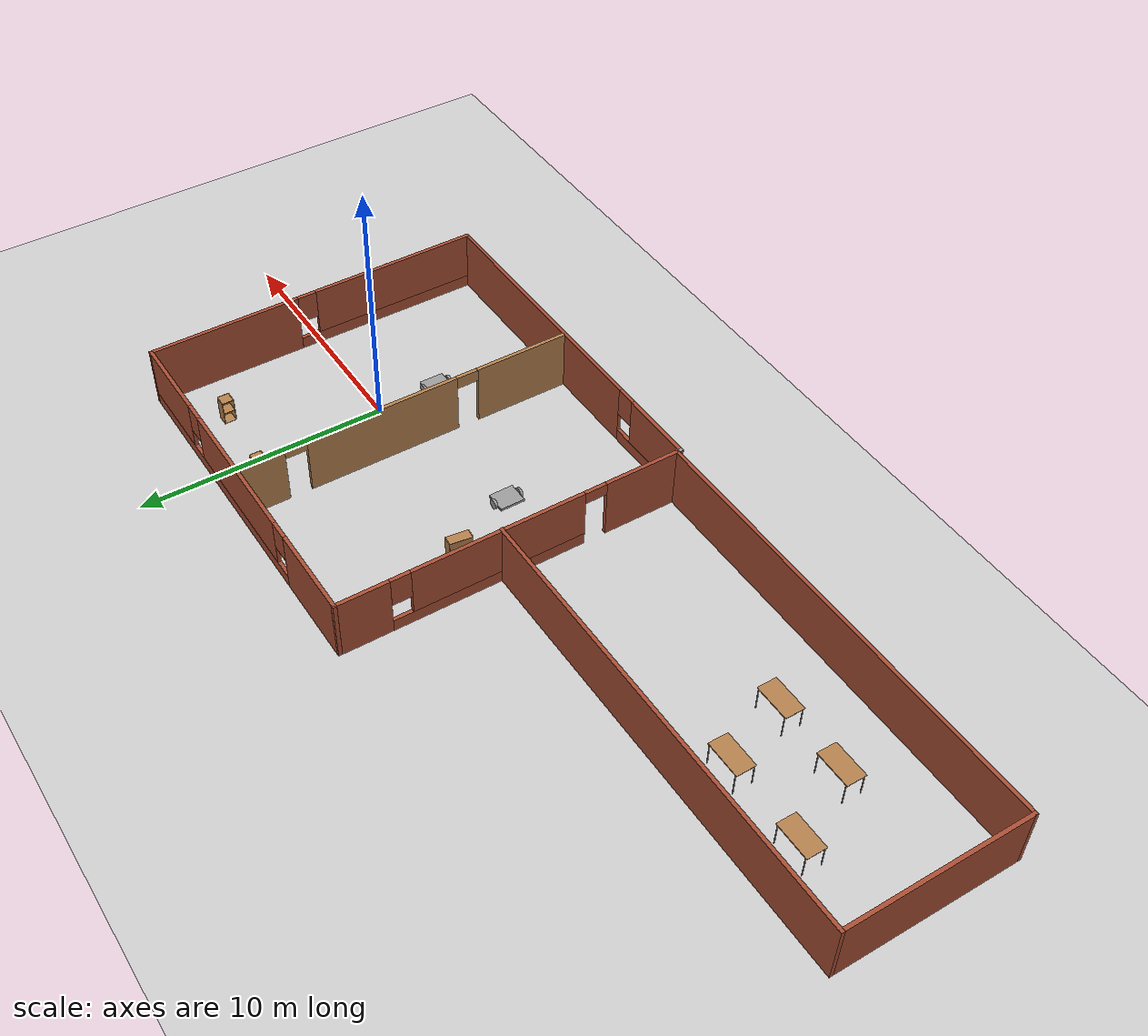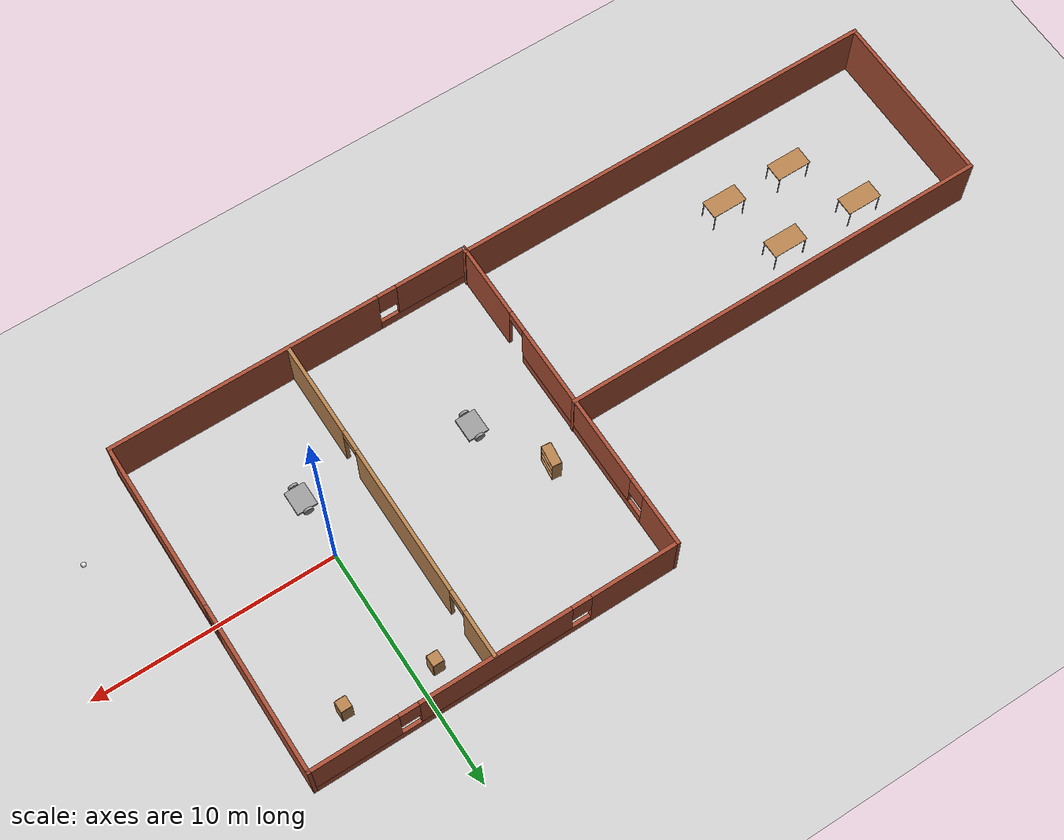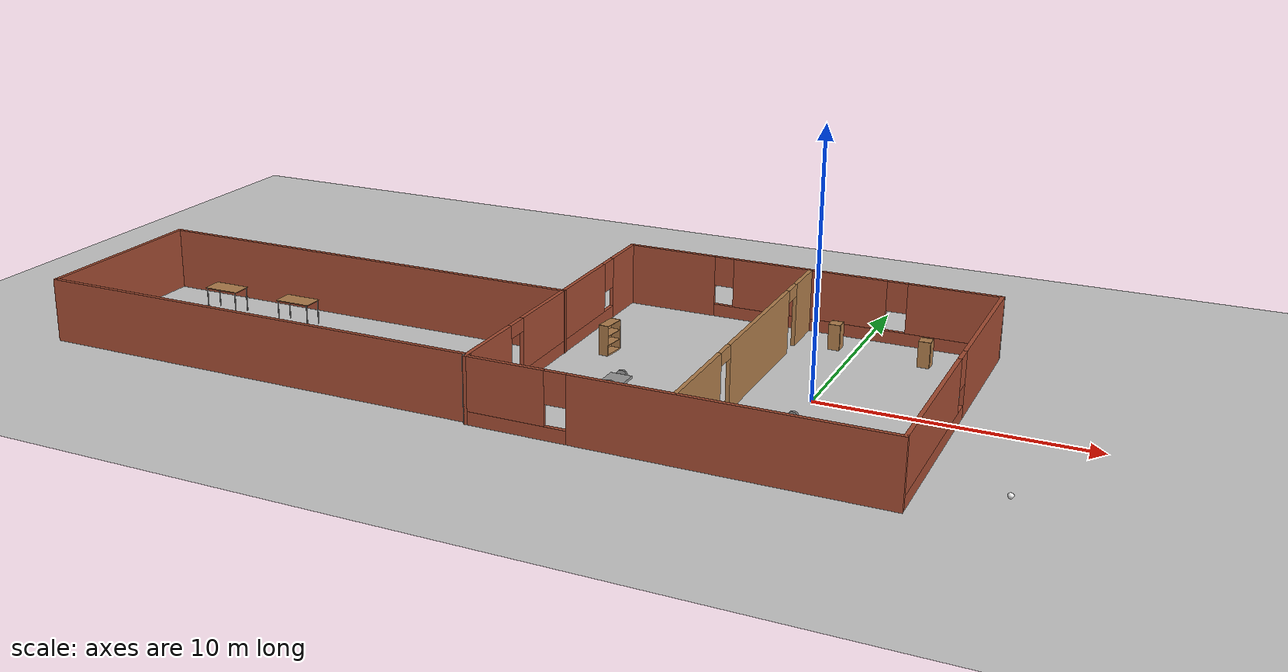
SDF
<sdf version="1.6">
 <world name="default">
  <light name="sun" type="directional">
   <pose>0 0 10 0 -0 0</pose>
   <diffuse>0.8 0.8 0.8 1</diffuse>
   <specular>0.2 0.2 0.2 1</specular>
   <attenuation>
    <range>1000</range>
    <constant>0.9</constant>
    <linear>0.01</linear>
    <quadratic>0.001</quadratic>
   </attenuation>
   <direction>-0.5 0.1 -0.9</direction>
  </light>
  <model name="ground_plane">
   <static>1</static>
   <link name="link">
    <collision name="collision">
     <geometry><plane><normal>0 0 1</normal><size>100 100</size></plane></geometry>
     <surface>
      <contact><collide_bitmask>65535</collide_bitmask></contact>
      <friction><ode><mu>100</mu><mu2>50</mu2></ode></friction>
     </surface>
    </collision>
    <visual name="visual">
     <cast_shadows>0</cast_shadows>
     <geometry><plane><normal>0 0 1</normal><size>100 100</size></plane></geometry>
     <material>
      <script><uri>file://media/materials/scripts/gazebo.material</uri><name>Gazebo/Grey</name></script>
     </material>
    </visual>
   </link>
  </model>
  <gravity>0 0 -9.8</gravity>
  <magnetic_field>6e-06 2.3e-05 -4.2e-05</magnetic_field>
  <atmosphere type="adiabatic"/>
  <physics name="default_physics" default="0" type="ode">
   <max_step_size>0.001</max_step_size>
   <real_time_factor>1</real_time_factor>
   <real_time_update_rate>1000</real_time_update_rate>
  </physics>
  <scene><ambient>0.4 0.4 0.4 1</ambient><background>0.7 0.7 0.7 1</background><shadows>1</shadows></scene>
  <spherical_coordinates>
   <surface_model>EARTH_WGS84</surface_model>
   <latitude_deg>0</latitude_deg>
   <longitude_deg>0</longitude_deg>
   <elevation>0</elevation>
   <heading_deg>0</heading_deg>
  </spherical_coordinates>
  <model name="building">
   <pose>-11.5372 0 0 0 -0 0</pose>
   <link name="Wall_17">
    <pose>1.53722 0 0 0 0 -1.5708</pose>
    <visual name="Wall_17_Visual_0">
     <pose>-6.00099 0 1.25 0 -0 0</pose>
     <geometry><box><size>2.14802 0.15 2.5</size></box></geometry>
     <material>
      <script><uri>file://media/materials/scripts/gazebo.material</uri><name>Gazebo/Bricks</name></script>
      <ambient>1 1 1 1</ambient>
     </material>
     <meta><layer>0</layer></meta>
    </visual>
    <collision name="Wall_17_Collision_0">
     <geometry><box><size>2.14802 0.15 2.5</size></box></geometry>
     <pose>-6.00099 0 1.25 0 -0 0</pose>
    </collision>
    <visual name="Wall_17_Visual_1">
     <pose>5.42921 0 1.25 0 -0 0</pose>
     <geometry><box><size>3.29158 0.15 2.5</size></box></geometry>
     <material>
      <script><uri>file://media/materials/scripts/gazebo.material</uri><name>Gazebo/Bricks</name></script>
      <ambient>1 1 1 1</ambient>
     </material>
     <meta><layer>0</layer></meta>
    </visual>
    <collision name="Wall_17_Collision_1">
     <geometry><box><size>3.29158 0.15 2.5</size></box></geometry>
     <pose>5.42921 0 1.25 0 -0 0</pose>
    </collision>
    <visual name="Wall_17_Visual_2">
     <pose>-1.02178 0 0.25 0 -0 0</pose>
     <geometry><box><size>7.8104 0.15 0.5</size></box></geometry>
     <material>
      <script><uri>file://media/materials/scripts/gazebo.material</uri><name>Gazebo/Bricks</name></script>
      <ambient>1 1 1 1</ambient>
     </material>
     <meta><layer>0</layer></meta>
    </visual>
    <collision name="Wall_17_Collision_2">
     <geometry><box><size>7.8104 0.15 0.5</size></box></geometry>
     <pose>-1.02178 0 0.25 0 -0 0</pose>
    </collision>
    <visual name="Wall_17_Visual_3">
     <pose>-0.621784 0 1.5 0 -0 0</pose>
     <geometry><box><size>7.0104 0.15 2</size></box></geometry>
     <material>
      <script><uri>file://media/materials/scripts/gazebo.material</uri><name>Gazebo/Bricks</name></script>
      <ambient>1 1 1 1</ambient>
     </material>
     <meta><layer>0</layer></meta>
    </visual>
    <collision name="Wall_17_Collision_3">
     <geometry><box><size>7.0104 0.15 2</size></box></geometry>
     <pose>-0.621784 0 1.5 0 -0 0</pose>
    </collision>
    <visual name="Wall_17_Visual_4">
     <pose>-4.52698 0 1.9 0 -0 0</pose>
     <geometry><box><size>0.8 0.15 1.2</size></box></geometry>
     <material>
      <script><uri>file://media/materials/scripts/gazebo.material</uri><name>Gazebo/Bricks</name></script>
      <ambient>1 1 1 1</ambient>
     </material>
     <meta><layer>0</layer></meta>
    </visual>
    <collision name="Wall_17_Collision_4">
     <geometry><box><size>0.8 0.15 1.2</size></box></geometry>
     <pose>-4.52698 0 1.9 0 -0 0</pose>
    </collision>
    <visual name="Wall_17_Visual_5">
     <pose>3.33342 0 2.25 0 -0 0</pose>
     <geometry><box><size>0.9 0.15 0.5</size></box></geometry>
     <material>
      <script><uri>file://media/materials/scripts/gazebo.material</uri><name>Gazebo/Bricks</name></script>
      <ambient>1 1 1 1</ambient>
     </material>
     <meta><layer>0</layer></meta>
    </visual>
    <collision name="Wall_17_Collision_5">
     <geometry><box><size>0.9 0.15 0.5</size></box></geometry>
     <pose>3.33342 0 2.25 0 -0 0</pose>
    </collision>
   </link>
   <link name="Wall_19">
    <pose>9.14245 0.034967 0 0 0 -1.5708</pose>
    <visual name="Wall_19_Visual_0">
     <pose>-6.0178 0 1.25 0 -0 0</pose>
     <geometry><box><size>1.9644 0.15 2.5</size></box></geometry>
     <material>
      <script><uri>file://media/materials/scripts/gazebo.material</uri><name>Gazebo/Wood</name></script>
      <ambient>1 1 1 1</ambient>
     </material>
     <meta><layer>0</layer></meta>
    </visual>
    <collision name="Wall_19_Collision_0">
     <geometry><box><size>1.9644 0.15 2.5</size></box></geometry>
     <pose>-6.0178 0 1.25 0 -0 0</pose>
    </collision>
    <visual name="Wall_19_Visual_1">
     <pose>-0.982911 0 1.25 0 -0 0</pose>
     <geometry><box><size>6.30537 0.15 2.5</size></box></geometry>
     <material>
      <script><uri>file://media/materials/scripts/gazebo.material</uri><name>Gazebo/Wood</name></script>
      <ambient>1 1 1 1</ambient>
     </material>
     <meta><layer>0</layer></meta>
    </visual>
    <collision name="Wall_19_Collision_1">
     <geometry><box><size>6.30537 0.15 2.5</size></box></geometry>
     <pose>-0.982911 0 1.25 0 -0 0</pose>
    </collision>
    <visual name="Wall_19_Visual_2">
     <pose>5.03489 0 1.25 0 -0 0</pose>
     <geometry><box><size>3.93023 0.15 2.5</size></box></geometry>
     <material>
      <script><uri>file://media/materials/scripts/gazebo.material</uri><name>Gazebo/Wood</name></script>
      <ambient>1 1 1 1</ambient>
     </material>
     <meta><layer>0</layer></meta>
    </visual>
    <collision name="Wall_19_Collision_2">
     <geometry><box><size>3.93023 0.15 2.5</size></box></geometry>
     <pose>5.03489 0 1.25 0 -0 0</pose>
    </collision>
    <visual name="Wall_19_Visual_3">
     <pose>-4.58559 0 2.25 0 -0 0</pose>
     <geometry><box><size>0.9 0.15 0.5</size></box></geometry>
     <material>
      <script><uri>file://media/materials/scripts/gazebo.material</uri><name>Gazebo/Wood</name></script>
      <ambient>1 1 1 1</ambient>
     </material>
     <meta><layer>0</layer></meta>
    </visual>
    <collision name="Wall_19_Collision_3">
     <geometry><box><size>0.9 0.15 0.5</size></box></geometry>
     <pose>-4.58559 0 2.25 0 -0 0</pose>
    </collision>
    <visual name="Wall_19_Visual_4">
     <pose>2.61977 0 2.25 0 -0 0</pose>
     <geometry><box><size>0.9 0.15 0.5</size></box></geometry>
     <material>
      <script><uri>file://media/materials/scripts/gazebo.material</uri><name>Gazebo/Wood</name></script>
      <ambient>1 1 1 1</ambient>
     </material>
     <meta><layer>0</layer></meta>
    </visual>
    <collision name="Wall_19_Collision_4">
     <geometry><box><size>0.9 0.15 0.5</size></box></geometry>
     <pose>2.61977 0 2.25 0 -0 0</pose>
    </collision>
   </link>
   <link name="Wall_21">
    <collision name="Wall_21_Collision">
     <geometry><box><size>18.25 0.15 2.5</size></box></geometry>
     <pose>0 0 1.25 0 -0 0</pose>
    </collision>
    <visual name="Wall_21_Visual">
     <pose>0 0 1.25 0 -0 0</pose>
     <geometry><box><size>18.25 0.15 2.5</size></box></geometry>
     <material>
      <script><uri>file://media/materials/scripts/gazebo.material</uri><name>Gazebo/Bricks</name></script>
      <ambient>1 1 1 1</ambient>
     </material>
     <meta><layer>0</layer></meta>
    </visual>
    <pose>-7.48722 0.503208 0 0 -0 3.14159</pose>
   </link>
   <link name="Wall_22">
    <collision name="Wall_22_Collision">
     <geometry><box><size>7.5 0.15 2.5</size></box></geometry>
     <pose>0 0 1.25 0 -0 0</pose>
    </collision>
    <visual name="Wall_22_Visual">
     <pose>0 0 1.25 0 -0 0</pose>
     <geometry><box><size>7.5 0.15 2.5</size></box></geometry>
     <material>
      <script><uri>file://media/materials/scripts/gazebo.material</uri><name>Gazebo/Bricks</name></script>
      <ambient>1 1 1 1</ambient>
     </material>
     <meta><layer>0</layer></meta>
    </visual>
    <pose>-16.5372 -3.17179 0 0 0 -1.5708</pose>
   </link>
   <link name="Wall_23">
    <collision name="Wall_23_Collision">
     <geometry><box><size>18.25 0.15 2.5</size></box></geometry>
     <pose>0 0 1.25 0 -0 0</pose>
    </collision>
    <visual name="Wall_23_Visual">
     <pose>0 0 1.25 0 -0 0</pose>
     <geometry><box><size>18.25 0.15 2.5</size></box></geometry>
     <material>
      <script><uri>file://media/materials/scripts/gazebo.material</uri><name>Gazebo/Bricks</name></script>
      <ambient>1 1 1 1</ambient>
     </material>
     <meta><layer>0</layer></meta>
    </visual>
    <pose>-7.48722 -6.84679 0 0 -0 0</pose>
   </link>
   <link name="Wall_4">
    <pose>9.03722 7 0 0 -0 0</pose>
    <visual name="Wall_4_Visual_0">
     <pose>-5.71283 0 1.25 0 -0 0</pose>
     <geometry><box><size>3.72434 0.15 2.5</size></box></geometry>
     <material>
      <script><uri>file://media/materials/scripts/gazebo.material</uri><name>Gazebo/Bricks</name></script>
      <ambient>1 1 1 1</ambient>
     </material>
     <meta><layer>0</layer></meta>
    </visual>
    <collision name="Wall_4_Collision_0">
     <geometry><box><size>3.72434 0.15 2.5</size></box></geometry>
     <pose>-5.71283 0 1.25 0 -0 0</pose>
    </collision>
    <visual name="Wall_4_Visual_1">
     <pose>1.86217 0 0.25 0 -0 0</pose>
     <geometry><box><size>11.4257 0.15 0.5</size></box></geometry>
     <material>
      <script><uri>file://media/materials/scripts/gazebo.material</uri><name>Gazebo/Bricks</name></script>
      <ambient>1 1 1 1</ambient>
     </material>
     <meta><layer>0</layer></meta>
    </visual>
    <collision name="Wall_4_Collision_1">
     <geometry><box><size>11.4257 0.15 0.5</size></box></geometry>
     <pose>1.86217 0 0.25 0 -0 0</pose>
    </collision>
    <visual name="Wall_4_Visual_2">
     <pose>0.058444 0 1.5 0 -0 0</pose>
     <geometry><box><size>6.21822 0.15 2</size></box></geometry>
     <material>
      <script><uri>file://media/materials/scripts/gazebo.material</uri><name>Gazebo/Bricks</name></script>
      <ambient>1 1 1 1</ambient>
     </material>
     <meta><layer>0</layer></meta>
    </visual>
    <collision name="Wall_4_Collision_2">
     <geometry><box><size>6.21822 0.15 2</size></box></geometry>
     <pose>0.058444 0 1.5 0 -0 0</pose>
    </collision>
    <visual name="Wall_4_Visual_3">
     <pose>5.77128 0 1.5 0 -0 0</pose>
     <geometry><box><size>3.60745 0.15 2</size></box></geometry>
     <material>
      <script><uri>file://media/materials/scripts/gazebo.material</uri><name>Gazebo/Bricks</name></script>
      <ambient>1 1 1 1</ambient>
     </material>
     <meta><layer>0</layer></meta>
    </visual>
    <collision name="Wall_4_Collision_3">
     <geometry><box><size>3.60745 0.15 2</size></box></geometry>
     <pose>5.77128 0 1.5 0 -0 0</pose>
    </collision>
    <visual name="Wall_4_Visual_4">
     <pose>-3.45066 0 1.9 0 -0 0</pose>
     <geometry><box><size>0.8 0.15 1.2</size></box></geometry>
     <material>
      <script><uri>file://media/materials/scripts/gazebo.material</uri><name>Gazebo/Bricks</name></script>
      <ambient>1 1 1 1</ambient>
     </material>
     <meta><layer>0</layer></meta>
    </visual>
    <collision name="Wall_4_Collision_4">
     <geometry><box><size>0.8 0.15 1.2</size></box></geometry>
     <pose>-3.45066 0 1.9 0 -0 0</pose>
    </collision>
    <visual name="Wall_4_Visual_5">
     <pose>3.56755 0 1.9 0 -0 0</pose>
     <geometry><box><size>0.8 0.15 1.2</size></box></geometry>
     <material>
      <script><uri>file://media/materials/scripts/gazebo.material</uri><name>Gazebo/Bricks</name></script>
      <ambient>1 1 1 1</ambient>
     </material>
     <meta><layer>0</layer></meta>
    </visual>
    <collision name="Wall_4_Collision_5">
     <geometry><box><size>0.8 0.15 1.2</size></box></geometry>
     <pose>3.56755 0 1.9 0 -0 0</pose>
    </collision>
   </link>
   <link name="Wall_5">
    <pose>16.5372 0 0 0 0 -1.5708</pose>
    <visual name="Wall_5_Visual_0">
     <pose>-3.94232 0 1.25 0 -0 0</pose>
     <geometry><box><size>6.26537 0.15 2.5</size></box></geometry>
     <material>
      <script><uri>file://media/materials/scripts/gazebo.material</uri><name>Gazebo/Bricks</name></script>
      <ambient>1 1 1 1</ambient>
     </material>
     <meta><layer>0</layer></meta>
    </visual>
    <collision name="Wall_5_Collision_0">
     <geometry><box><size>6.26537 0.15 2.5</size></box></geometry>
     <pose>-3.94232 0 1.25 0 -0 0</pose>
    </collision>
    <visual name="Wall_5_Visual_1">
     <pose>3.13268 0 0.25 0 -0 0</pose>
     <geometry><box><size>7.88463 0.15 0.5</size></box></geometry>
     <material>
      <script><uri>file://media/materials/scripts/gazebo.material</uri><name>Gazebo/Bricks</name></script>
      <ambient>1 1 1 1</ambient>
     </material>
     <meta><layer>0</layer></meta>
    </visual>
    <collision name="Wall_5_Collision_1">
     <geometry><box><size>7.88463 0.15 0.5</size></box></geometry>
     <pose>3.13268 0 0.25 0 -0 0</pose>
    </collision>
    <visual name="Wall_5_Visual_2">
     <pose>3.53268 0 1.5 0 -0 0</pose>
     <geometry><box><size>7.08463 0.15 2</size></box></geometry>
     <material>
      <script><uri>file://media/materials/scripts/gazebo.material</uri><name>Gazebo/Bricks</name></script>
      <ambient>1 1 1 1</ambient>
     </material>
     <meta><layer>0</layer></meta>
    </visual>
    <collision name="Wall_5_Collision_2">
     <geometry><box><size>7.08463 0.15 2</size></box></geometry>
     <pose>3.53268 0 1.5 0 -0 0</pose>
    </collision>
    <visual name="Wall_5_Visual_3">
     <pose>-0.409632 0 1.9 0 -0 0</pose>
     <geometry><box><size>0.8 0.15 1.2</size></box></geometry>
     <material>
      <script><uri>file://media/materials/scripts/gazebo.material</uri><name>Gazebo/Bricks</name></script>
      <ambient>1 1 1 1</ambient>
     </material>
     <meta><layer>0</layer></meta>
    </visual>
    <collision name="Wall_5_Collision_3">
     <geometry><box><size>0.8 0.15 1.2</size></box></geometry>
     <pose>-0.409632 0 1.9 0 -0 0</pose>
    </collision>
   </link>
   <link name="Wall_6">
    <pose>9.03722 -7 0 0 -0 3.14159</pose>
    <visual name="Wall_6_Visual_0">
     <pose>-1.93465 0 1.25 0 -0 0</pose>
     <geometry><box><size>11.2807 0.15 2.5</size></box></geometry>
     <material>
      <script><uri>file://media/materials/scripts/gazebo.material</uri><name>Gazebo/Bricks</name></script>
      <ambient>1 1 1 1</ambient>
     </material>
     <meta><layer>0</layer></meta>
    </visual>
    <collision name="Wall_6_Collision_0">
     <geometry><box><size>11.2807 0.15 2.5</size></box></geometry>
     <pose>-1.93465 0 1.25 0 -0 0</pose>
    </collision>
    <visual name="Wall_6_Visual_1">
     <pose>5.64035 0 0.25 0 -0 0</pose>
     <geometry><box><size>3.8693 0.15 0.5</size></box></geometry>
     <material>
      <script><uri>file://media/materials/scripts/gazebo.material</uri><name>Gazebo/Bricks</name></script>
      <ambient>1 1 1 1</ambient>
     </material>
     <meta><layer>0</layer></meta>
    </visual>
    <collision name="Wall_6_Collision_1">
     <geometry><box><size>3.8693 0.15 0.5</size></box></geometry>
     <pose>5.64035 0 0.25 0 -0 0</pose>
    </collision>
    <visual name="Wall_6_Visual_2">
     <pose>6.04035 0 1.5 0 -0 0</pose>
     <geometry><box><size>3.0693 0.15 2</size></box></geometry>
     <material>
      <script><uri>file://media/materials/scripts/gazebo.material</uri><name>Gazebo/Bricks</name></script>
      <ambient>1 1 1 1</ambient>
     </material>
     <meta><layer>0</layer></meta>
    </visual>
    <collision name="Wall_6_Collision_2">
     <geometry><box><size>3.0693 0.15 2</size></box></geometry>
     <pose>6.04035 0 1.5 0 -0 0</pose>
    </collision>
    <visual name="Wall_6_Visual_3">
     <pose>4.1057 0 1.9 0 -0 0</pose>
     <geometry><box><size>0.8 0.15 1.2</size></box></geometry>
     <material>
      <script><uri>file://media/materials/scripts/gazebo.material</uri><name>Gazebo/Bricks</name></script>
      <ambient>1 1 1 1</ambient>
     </material>
     <meta><layer>0</layer></meta>
    </visual>
    <collision name="Wall_6_Collision_3">
     <geometry><box><size>0.8 0.15 1.2</size></box></geometry>
     <pose>4.1057 0 1.9 0 -0 0</pose>
    </collision>
   </link>
   <link name="Wall_7">
    <collision name="Wall_7_Collision">
     <geometry><box><size>0.15 0.15 2.5</size></box></geometry>
     <pose>0 0 1.25 0 -0 0</pose>
    </collision>
    <visual name="Wall_7_Visual">
     <pose>0 0 1.25 0 -0 0</pose>
     <geometry><box><size>0.15 0.15 2.5</size></box></geometry>
     <material>
      <script><uri>file://media/materials/scripts/gazebo.material</uri><name>Gazebo/Grey</name></script>
      <ambient>1 1 1 1</ambient>
     </material>
     <meta><layer>0</layer></meta>
    </visual>
    <pose>1.53722 -7 0 0 -0 0</pose>
   </link>
   <static>1</static>
  </model>
  <model name="table">
   <static>1</static>
   <link name="link">
    <collision name="surface">
     <pose>0 0 1 0 -0 0</pose>
     <geometry><box><size>1.5 0.8 0.03</size></box></geometry>
     <surface><friction><ode><mu>0.6</mu><mu2>0.6</mu2></ode></friction></surface>
    </collision>
    <visual name="visual1">
     <pose>0 0 1 0 -0 0</pose>
     <geometry><box><size>1.5 0.8 0.03</size></box></geometry>
     <material>
      <script><uri>file://media/materials/scripts/gazebo.material</uri><name>Gazebo/Wood</name></script>
     </material>
    </visual>
    <collision name="front_left_leg">
     <pose>0.68 0.38 0.5 0 -0 0</pose>
     <geometry><cylinder><radius>0.02</radius><length>1</length></cylinder></geometry>
    </collision>
    <visual name="front_left_leg">
     <pose>0.68 0.38 0.5 0 -0 0</pose>
     <geometry><cylinder><radius>0.02</radius><length>1</length></cylinder></geometry>
     <material>
      <script><uri>file://media/materials/scripts/gazebo.material</uri><name>Gazebo/Grey</name></script>
     </material>
    </visual>
    <collision name="front_right_leg">
     <pose>0.68 -0.38 0.5 0 -0 0</pose>
     <geometry><cylinder><radius>0.02</radius><length>1</length></cylinder></geometry>
    </collision>
    <visual name="front_right_leg">
     <pose>0.68 -0.38 0.5 0 -0 0</pose>
     <geometry><cylinder><radius>0.02</radius><length>1</length></cylinder></geometry>
     <material>
      <script><uri>file://media/materials/scripts/gazebo.material</uri><name>Gazebo/Grey</name></script>
     </material>
    </visual>
    <collision name="back_right_leg">
     <pose>-0.68 -0.38 0.5 0 -0 0</pose>
     <geometry><cylinder><radius>0.02</radius><length>1</length></cylinder></geometry>
    </collision>
    <visual name="back_right_leg">
     <pose>-0.68 -0.38 0.5 0 -0 0</pose>
     <geometry><cylinder><radius>0.02</radius><length>1</length></cylinder></geometry>
     <material>
      <script><uri>file://media/materials/scripts/gazebo.material</uri><name>Gazebo/Grey</name></script>
     </material>
    </visual>
    <collision name="back_left_leg">
     <pose>-0.68 0.38 0.5 0 -0 0</pose>
     <geometry><cylinder><radius>0.02</radius><length>1</length></cylinder></geometry>
    </collision>
    <visual name="back_left_leg">
     <pose>-0.68 0.38 0.5 0 -0 0</pose>
     <geometry><cylinder><radius>0.02</radius><length>1</length></cylinder></geometry>
     <material>
      <script><uri>file://media/materials/scripts/gazebo.material</uri><name>Gazebo/Grey</name></script>
     </material>
    </visual>
   </link>
   <pose>-24.3834 -1.2632 0 0 -0 0</pose>
  </model>
  <model name="table_0">
   <static>1</static>
   <link name="link">
    <collision name="surface">
     <pose>0 0 1 0 -0 0</pose>
     <geometry><box><size>1.5 0.8 0.03</size></box></geometry>
     <surface><friction><ode><mu>0.6</mu><mu2>0.6</mu2></ode></friction></surface>
    </collision>
    <visual name="visual1">
     <pose>0 0 1 0 -0 0</pose>
     <geometry><box><size>1.5 0.8 0.03</size></box></geometry>
     <material>
      <script><uri>file://media/materials/scripts/gazebo.material</uri><name>Gazebo/Wood</name></script>
     </material>
    </visual>
    <collision name="front_left_leg">
     <pose>0.68 0.38 0.5 0 -0 0</pose>
     <geometry><cylinder><radius>0.02</radius><length>1</length></cylinder></geometry>
    </collision>
    <visual name="front_left_leg">
     <pose>0.68 0.38 0.5 0 -0 0</pose>
     <geometry><cylinder><radius>0.02</radius><length>1</length></cylinder></geometry>
     <material>
      <script><uri>file://media/materials/scripts/gazebo.material</uri><name>Gazebo/Grey</name></script>
     </material>
    </visual>
    <collision name="front_right_leg">
     <pose>0.68 -0.38 0.5 0 -0 0</pose>
     <geometry><cylinder><radius>0.02</radius><length>1</length></cylinder></geometry>
    </collision>
    <visual name="front_right_leg">
     <pose>0.68 -0.38 0.5 0 -0 0</pose>
     <geometry><cylinder><radius>0.02</radius><length>1</length></cylinder></geometry>
     <material>
      <script><uri>file://media/materials/scripts/gazebo.material</uri><name>Gazebo/Grey</name></script>
     </material>
    </visual>
    <collision name="back_right_leg">
     <pose>-0.68 -0.38 0.5 0 -0 0</pose>
     <geometry><cylinder><radius>0.02</radius><length>1</length></cylinder></geometry>
    </collision>
    <visual name="back_right_leg">
     <pose>-0.68 -0.38 0.5 0 -0 0</pose>
     <geometry><cylinder><radius>0.02</radius><length>1</length></cylinder></geometry>
     <material>
      <script><uri>file://media/materials/scripts/gazebo.material</uri><name>Gazebo/Grey</name></script>
     </material>
    </visual>
    <collision name="back_left_leg">
     <pose>-0.68 0.38 0.5 0 -0 0</pose>
     <geometry><cylinder><radius>0.02</radius><length>1</length></cylinder></geometry>
    </collision>
    <visual name="back_left_leg">
     <pose>-0.68 0.38 0.5 0 -0 0</pose>
     <geometry><cylinder><radius>0.02</radius><length>1</length></cylinder></geometry>
     <material>
      <script><uri>file://media/materials/scripts/gazebo.material</uri><name>Gazebo/Grey</name></script>
     </material>
    </visual>
   </link>
   <pose>-20.8804 -1.28719 0 0 -0 0</pose>
  </model>
  <model name="table_1">
   <static>1</static>
   <link name="link">
    <collision name="surface">
     <pose>0 0 1 0 -0 0</pose>
     <geometry><box><size>1.5 0.8 0.03</size></box></geometry>
     <surface><friction><ode><mu>0.6</mu><mu2>0.6</mu2></ode></friction></surface>
    </collision>
    <visual name="visual1">
     <pose>0 0 1 0 -0 0</pose>
     <geometry><box><size>1.5 0.8 0.03</size></box></geometry>
     <material>
      <script><uri>file://media/materials/scripts/gazebo.material</uri><name>Gazebo/Wood</name></script>
     </material>
    </visual>
    <collision name="front_left_leg">
     <pose>0.68 0.38 0.5 0 -0 0</pose>
     <geometry><cylinder><radius>0.02</radius><length>1</length></cylinder></geometry>
    </collision>
    <visual name="front_left_leg">
     <pose>0.68 0.38 0.5 0 -0 0</pose>
     <geometry><cylinder><radius>0.02</radius><length>1</length></cylinder></geometry>
     <material>
      <script><uri>file://media/materials/scripts/gazebo.material</uri><name>Gazebo/Grey</name></script>
     </material>
    </visual>
    <collision name="front_right_leg">
     <pose>0.68 -0.38 0.5 0 -0 0</pose>
     <geometry><cylinder><radius>0.02</radius><length>1</length></cylinder></geometry>
    </collision>
    <visual name="front_right_leg">
     <pose>0.68 -0.38 0.5 0 -0 0</pose>
     <geometry><cylinder><radius>0.02</radius><length>1</length></cylinder></geometry>
     <material>
      <script><uri>file://media/materials/scripts/gazebo.material</uri><name>Gazebo/Grey</name></script>
     </material>
    </visual>
    <collision name="back_right_leg">
     <pose>-0.68 -0.38 0.5 0 -0 0</pose>
     <geometry><cylinder><radius>0.02</radius><length>1</length></cylinder></geometry>
    </collision>
    <visual name="back_right_leg">
     <pose>-0.68 -0.38 0.5 0 -0 0</pose>
     <geometry><cylinder><radius>0.02</radius><length>1</length></cylinder></geometry>
     <material>
      <script><uri>file://media/materials/scripts/gazebo.material</uri><name>Gazebo/Grey</name></script>
     </material>
    </visual>
    <collision name="back_left_leg">
     <pose>-0.68 0.38 0.5 0 -0 0</pose>
     <geometry><cylinder><radius>0.02</radius><length>1</length></cylinder></geometry>
    </collision>
    <visual name="back_left_leg">
     <pose>-0.68 0.38 0.5 0 -0 0</pose>
     <geometry><cylinder><radius>0.02</radius><length>1</length></cylinder></geometry>
     <material>
      <script><uri>file://media/materials/scripts/gazebo.material</uri><name>Gazebo/Grey</name></script>
     </material>
    </visual>
   </link>
   <pose>-22.9871 -3.97615 0 0 -0 0</pose>
  </model>
  <model name="table_2">
   <static>1</static>
   <link name="link">
    <collision name="surface">
     <pose>0 0 1 0 -0 0</pose>
     <geometry><box><size>1.5 0.8 0.03</size></box></geometry>
     <surface><friction><ode><mu>0.6</mu><mu2>0.6</mu2></ode></friction></surface>
    </collision>
    <visual name="visual1">
     <pose>0 0 1 0 -0 0</pose>
     <geometry><box><size>1.5 0.8 0.03</size></box></geometry>
     <material>
      <script><uri>file://media/materials/scripts/gazebo.material</uri><name>Gazebo/Wood</name></script>
     </material>
    </visual>
    <collision name="front_left_leg">
     <pose>0.68 0.38 0.5 0 -0 0</pose>
     <geometry><cylinder><radius>0.02</radius><length>1</length></cylinder></geometry>
    </collision>
    <visual name="front_left_leg">
     <pose>0.68 0.38 0.5 0 -0 0</pose>
     <geometry><cylinder><radius>0.02</radius><length>1</length></cylinder></geometry>
     <material>
      <script><uri>file://media/materials/scripts/gazebo.material</uri><name>Gazebo/Grey</name></script>
     </material>
    </visual>
    <collision name="front_right_leg">
     <pose>0.68 -0.38 0.5 0 -0 0</pose>
     <geometry><cylinder><radius>0.02</radius><length>1</length></cylinder></geometry>
    </collision>
    <visual name="front_right_leg">
     <pose>0.68 -0.38 0.5 0 -0 0</pose>
     <geometry><cylinder><radius>0.02</radius><length>1</length></cylinder></geometry>
     <material>
      <script><uri>file://media/materials/scripts/gazebo.material</uri><name>Gazebo/Grey</name></script>
     </material>
    </visual>
    <collision name="back_right_leg">
     <pose>-0.68 -0.38 0.5 0 -0 0</pose>
     <geometry><cylinder><radius>0.02</radius><length>1</length></cylinder></geometry>
    </collision>
    <visual name="back_right_leg">
     <pose>-0.68 -0.38 0.5 0 -0 0</pose>
     <geometry><cylinder><radius>0.02</radius><length>1</length></cylinder></geometry>
     <material>
      <script><uri>file://media/materials/scripts/gazebo.material</uri><name>Gazebo/Grey</name></script>
     </material>
    </visual>
    <collision name="back_left_leg">
     <pose>-0.68 0.38 0.5 0 -0 0</pose>
     <geometry><cylinder><radius>0.02</radius><length>1</length></cylinder></geometry>
    </collision>
    <visual name="back_left_leg">
     <pose>-0.68 0.38 0.5 0 -0 0</pose>
     <geometry><cylinder><radius>0.02</radius><length>1</length></cylinder></geometry>
     <material>
      <script><uri>file://media/materials/scripts/gazebo.material</uri><name>Gazebo/Grey</name></script>
     </material>
    </visual>
   </link>
   <pose>-19.9277 -3.97657 0 0 -0 0</pose>
  </model>
  <model name="cabinet">
   <static>1</static>
   <link name="cabinet_bottom_plate">
    <inertial>
     <pose>0 0 -1 0 -0 0</pose>
     <inertia><ixx>2.05</ixx><ixy>0</ixy><ixz>0</ixz><iyy>2.05</iyy><iyz>0</iyz><izz>2.05</izz></inertia>
     <mass>25</mass>
    </inertial>
    <collision name="cabinet_bottom_plate_geom">
     <pose>0 0 0.01 0 -0 0</pose>
     <geometry><box><size>0.45 0.45 0.02</size></box></geometry>
    </collision>
    <visual name="cabinet_bottom_plate_geom_visual">
     <pose>0 0 0.01 0 -0 0</pose>
     <geometry><box><size>0.45 0.45 0.02</size></box></geometry>
     <material>
      <script><uri>file://media/materials/scripts/gazebo.material</uri><name>Gazebo/Wood</name></script>
     </material>
    </visual>
    <collision name="cabinet_bottom_plate_geom_cabinet_back_plate">
     <pose>0.235 0 0.51 0 -0 0</pose>
     <geometry><box><size>0.02 0.45 1.02</size></box></geometry>
    </collision>
    <visual name="cabinet_bottom_plate_geom_cabinet_back_plate_visual">
     <pose>0.235 0 0.51 0 -0 0</pose>
     <geometry><box><size>0.02 0.45 1.02</size></box></geometry>
     <material>
      <script><uri>file://media/materials/scripts/gazebo.material</uri><name>Gazebo/Wood</name></script>
     </material>
    </visual>
    <collision name="cabinet_bottom_plate_geom_cabinet_left_plate">
     <pose>0 0.235 0.51 0 -0 0</pose>
     <geometry><box><size>0.45 0.02 1.02</size></box></geometry>
    </collision>
    <visual name="cabinet_bottom_plate_geom_cabinet_left_plate_visual">
     <pose>0 0.235 0.51 0 -0 0</pose>
     <geometry><box><size>0.45 0.02 1.02</size></box></geometry>
     <material>
      <script><uri>file://media/materials/scripts/gazebo.material</uri><name>Gazebo/Wood</name></script>
     </material>
    </visual>
    <collision name="cabinet_bottom_plate_geom_cabinet_middle_plate">
     <pose>0 0 0.51 0 -0 0</pose>
     <geometry><box><size>0.45 0.45 0.02</size></box></geometry>
    </collision>
    <visual name="cabinet_bottom_plate_geom_cabinet_middle_plate_visual">
     <pose>0 0 0.51 0 -0 0</pose>
     <geometry><box><size>0.45 0.45 0.02</size></box></geometry>
     <material>
      <script><uri>file://media/materials/scripts/gazebo.material</uri><name>Gazebo/Wood</name></script>
     </material>
    </visual>
    <collision name="cabinet_bottom_plate_geom_cabinet_right_plate">
     <pose>0 -0.235 0.51 0 -0 0</pose>
     <geometry><box><size>0.45 0.02 1.02</size></box></geometry>
    </collision>
    <visual name="cabinet_bottom_plate_geom_cabinet_right_plate_visual">
     <pose>0 -0.235 0.51 0 -0 0</pose>
     <geometry><box><size>0.45 0.02 1.02</size></box></geometry>
     <material>
      <script><uri>file://media/materials/scripts/gazebo.material</uri><name>Gazebo/Wood</name></script>
     </material>
    </visual>
    <collision name="cabinet_bottom_plate_geom_cabinet_top_plate">
     <pose>0 0 1.01 0 -0 0</pose>
     <geometry><box><size>0.45 0.45 0.02</size></box></geometry>
    </collision>
    <visual name="cabinet_bottom_plate_geom_cabinet_top_plate_visual">
     <pose>0 0 1.01 0 -0 0</pose>
     <geometry><box><size>0.45 0.45 0.02</size></box></geometry>
     <material>
      <script><uri>file://media/materials/scripts/gazebo.material</uri><name>Gazebo/Wood</name></script>
     </material>
    </visual>
   </link>
   <pose>-0.844018 5.52584 0 0 -0 0</pose>
  </model>
  <model name="cabinet_0">
   <static>1</static>
   <link name="cabinet_bottom_plate">
    <inertial>
     <pose>0 0 -1 0 -0 0</pose>
     <inertia><ixx>2.05</ixx><ixy>0</ixy><ixz>0</ixz><iyy>2.05</iyy><iyz>0</iyz><izz>2.05</izz></inertia>
     <mass>25</mass>
    </inertial>
    <collision name="cabinet_bottom_plate_geom">
     <pose>0 0 0.01 0 -0 0</pose>
     <geometry><box><size>0.45 0.45 0.02</size></box></geometry>
    </collision>
    <visual name="cabinet_bottom_plate_geom_visual">
     <pose>0 0 0.01 0 -0 0</pose>
     <geometry><box><size>0.45 0.45 0.02</size></box></geometry>
     <material>
      <script><uri>file://media/materials/scripts/gazebo.material</uri><name>Gazebo/Wood</name></script>
     </material>
    </visual>
    <collision name="cabinet_bottom_plate_geom_cabinet_back_plate">
     <pose>0.235 0 0.51 0 -0 0</pose>
     <geometry><box><size>0.02 0.45 1.02</size></box></geometry>
    </collision>
    <visual name="cabinet_bottom_plate_geom_cabinet_back_plate_visual">
     <pose>0.235 0 0.51 0 -0 0</pose>
     <geometry><box><size>0.02 0.45 1.02</size></box></geometry>
     <material>
      <script><uri>file://media/materials/scripts/gazebo.material</uri><name>Gazebo/Wood</name></script>
     </material>
    </visual>
    <collision name="cabinet_bottom_plate_geom_cabinet_left_plate">
     <pose>0 0.235 0.51 0 -0 0</pose>
     <geometry><box><size>0.45 0.02 1.02</size></box></geometry>
    </collision>
    <visual name="cabinet_bottom_plate_geom_cabinet_left_plate_visual">
     <pose>0 0.235 0.51 0 -0 0</pose>
     <geometry><box><size>0.45 0.02 1.02</size></box></geometry>
     <material>
      <script><uri>file://media/materials/scripts/gazebo.material</uri><name>Gazebo/Wood</name></script>
     </material>
    </visual>
    <collision name="cabinet_bottom_plate_geom_cabinet_middle_plate">
     <pose>0 0 0.51 0 -0 0</pose>
     <geometry><box><size>0.45 0.45 0.02</size></box></geometry>
    </collision>
    <visual name="cabinet_bottom_plate_geom_cabinet_middle_plate_visual">
     <pose>0 0 0.51 0 -0 0</pose>
     <geometry><box><size>0.45 0.45 0.02</size></box></geometry>
     <material>
      <script><uri>file://media/materials/scripts/gazebo.material</uri><name>Gazebo/Wood</name></script>
     </material>
    </visual>
    <collision name="cabinet_bottom_plate_geom_cabinet_right_plate">
     <pose>0 -0.235 0.51 0 -0 0</pose>
     <geometry><box><size>0.45 0.02 1.02</size></box></geometry>
    </collision>
    <visual name="cabinet_bottom_plate_geom_cabinet_right_plate_visual">
     <pose>0 -0.235 0.51 0 -0 0</pose>
     <geometry><box><size>0.45 0.02 1.02</size></box></geometry>
     <material>
      <script><uri>file://media/materials/scripts/gazebo.material</uri><name>Gazebo/Wood</name></script>
     </material>
    </visual>
    <collision name="cabinet_bottom_plate_geom_cabinet_top_plate">
     <pose>0 0 1.01 0 -0 0</pose>
     <geometry><box><size>0.45 0.45 0.02</size></box></geometry>
    </collision>
    <visual name="cabinet_bottom_plate_geom_cabinet_top_plate_visual">
     <pose>0 0 1.01 0 -0 0</pose>
     <geometry><box><size>0.45 0.45 0.02</size></box></geometry>
     <material>
      <script><uri>file://media/materials/scripts/gazebo.material</uri><name>Gazebo/Wood</name></script>
     </material>
    </visual>
   </link>
   <pose>2.69082 5.19004 0 0 -0 0</pose>
  </model>
  <model name="bookshelf">
   <static>1</static>
   <link name="link">
    <inertial><mass>1</mass></inertial>
    <collision name="back">
     <pose>0 0.005 0.6 0 -0 0</pose>
     <geometry><box><size>0.9 0.01 1.2</size></box></geometry>
    </collision>
    <visual name="visual1">
     <pose>0 0.005 0.6 0 -0 0</pose>
     <geometry><box><size>0.9 0.01 1.2</size></box></geometry>
     <material>
      <script><uri>file://media/materials/scripts/gazebo.material</uri><name>Gazebo/Wood</name></script>
     </material>
    </visual>
    <collision name="left_side">
     <pose>0.45 -0.195 0.6 0 -0 0</pose>
     <geometry><box><size>0.02 0.4 1.2</size></box></geometry>
    </collision>
    <visual name="visual2">
     <pose>0.45 -0.195 0.6 0 -0 0</pose>
     <geometry><box><size>0.02 0.4 1.2</size></box></geometry>
     <material>
      <script><uri>file://media/materials/scripts/gazebo.material</uri><name>Gazebo/Wood</name></script>
     </material>
    </visual>
    <collision name="right_side">
     <pose>-0.45 -0.195 0.6 0 -0 0</pose>
     <geometry><box><size>0.02 0.4 1.2</size></box></geometry>
    </collision>
    <visual name="visual3">
     <pose>-0.45 -0.195 0.6 0 -0 0</pose>
     <geometry><box><size>0.02 0.4 1.2</size></box></geometry>
     <material>
      <script><uri>file://media/materials/scripts/gazebo.material</uri><name>Gazebo/Wood</name></script>
     </material>
    </visual>
    <collision name="bottom">
     <pose>0 -0.195 0.03 0 -0 0</pose>
     <geometry><box><size>0.88 0.4 0.06</size></box></geometry>
    </collision>
    <visual name="visual4">
     <pose>0 -0.195 0.03 0 -0 0</pose>
     <geometry><box><size>0.88 0.4 0.06</size></box></geometry>
     <material>
      <script><uri>file://media/materials/scripts/gazebo.material</uri><name>Gazebo/Wood</name></script>
     </material>
    </visual>
    <collision name="top">
     <pose>0 -0.195 1.19 0 -0 0</pose>
     <geometry><box><size>0.88 0.4 0.02</size></box></geometry>
    </collision>
    <visual name="visual5">
     <pose>0 -0.195 1.19 0 -0 0</pose>
     <geometry><box><size>0.88 0.4 0.02</size></box></geometry>
     <material>
      <script><uri>file://media/materials/scripts/gazebo.material</uri><name>Gazebo/Wood</name></script>
     </material>
    </visual>
    <collision name="low_shelf">
     <pose>0 -0.195 0.43 0 -0 0</pose>
     <geometry><box><size>0.88 0.4 0.02</size></box></geometry>
    </collision>
    <visual name="visual6">
     <pose>0 -0.195 0.43 0 -0 0</pose>
     <geometry><box><size>0.88 0.4 0.02</size></box></geometry>
     <material>
      <script><uri>file://media/materials/scripts/gazebo.material</uri><name>Gazebo/Wood</name></script>
     </material>
    </visual>
    <collision name="high_shelf">
     <pose>0 -0.195 0.8 0 -0 0</pose>
     <geometry><box><size>0.88 0.4 0.02</size></box></geometry>
    </collision>
    <visual name="visual7">
     <pose>0 -0.195 0.8 0 -0 0</pose>
     <geometry><box><size>0.88 0.4 0.02</size></box></geometry>
     <material>
      <script><uri>file://media/materials/scripts/gazebo.material</uri><name>Gazebo/Wood</name></script>
     </material>
    </visual>
   </link>
   <pose>-8.63412 1.36978 0 0 -0 1.45231</pose>
  </model>
  <model name="myrobo_1">
   <link name="link_3">
    <inertial>
     <mass>1</mass>
     <inertia>
      <ixx>0.166667</ixx>
      <ixy>0</ixy>
      <ixz>0</ixz>
      <iyy>0.166667</iyy>
      <iyz>0</iyz>
      <izz>0.166667</izz>
     </inertia>
    </inertial>
    <visual name="visual">
     <geometry><box><size>0.85 1 0.1</size></box></geometry>
     <material>
      <lighting>1</lighting>
      <script><uri>file://media/materials/scripts/gazebo.material</uri><name>Gazebo/Grey</name></script>
      <shader type="pixel"><normal_map>__default__</normal_map></shader>
      <ambient>0.3 0.3 0.3 1</ambient>
      <diffuse>0.7 0.7 0.7 1</diffuse>
      <specular>0.01 0.01 0.01 1</specular>
      <emissive>0 0.8 0 1</emissive>
     </material>
    </visual>
    <collision name="collision">
     <geometry><box><size>0.85 1 0.1</size></box></geometry>
     <surface>
      <friction>
       <ode><mu>1</mu><mu2>1</mu2><fdir1>0 0 0</fdir1><slip1>0</slip1><slip2>0</slip2></ode>
       <torsional>
        <coefficient>1</coefficient>
        <patch_radius>0</patch_radius>
        <surface_radius>0</surface_radius>
        <use_patch_radius>1</use_patch_radius>
        <ode><slip>0</slip></ode>
       </torsional>
      </friction>
      <bounce><restitution_coefficient>0</restitution_coefficient><threshold>1e+06</threshold></bounce>
      <contact>
       <collide_without_contact>0</collide_without_contact>
       <collide_without_contact_bitmask>1</collide_without_contact_bitmask>
       <collide_bitmask>1</collide_bitmask>
       <ode>
        <soft_cfm>0</soft_cfm>
        <soft_erp>0.2</soft_erp>
        <kp>1e+13</kp>
        <kd>1</kd>
        <max_vel>0.01</max_vel>
        <min_depth>0</min_depth>
       </ode>
       <bullet>
        <split_impulse>1</split_impulse>
        <split_impulse_penetration_threshold>-0.01</split_impulse_penetration_threshold>
        <soft_cfm>0</soft_cfm>
        <soft_erp>0.2</soft_erp>
        <kp>1e+13</kp>
        <kd>1</kd>
       </bullet>
      </contact>
     </surface>
    </collision>
   </link>
   <link name="link_5">
    <pose>0 -0.550019 -0 1.5707 -0 0</pose>
    <inertial>
     <mass>1</mass>
     <inertia><ixx>0.145833</ixx><ixy>0</ixy><ixz>0</ixz><iyy>0.145833</iyy><iyz>0</iyz><izz>0.125</izz></inertia>
    </inertial>
    <visual name="visual">
     <geometry><cylinder><radius>0.2</radius><length>0.1</length></cylinder></geometry>
     <material>
      <lighting>1</lighting>
      <script><uri>file://media/materials/scripts/gazebo.material</uri><name>Gazebo/Grey</name></script>
      <shader type="pixel"><normal_map>__default__</normal_map></shader>
      <ambient>0.3 0.3 0.3 1</ambient>
      <diffuse>0.7 0.7 0.7 1</diffuse>
      <specular>0.01 0.01 0.01 1</specular>
      <emissive>0 0 0 1</emissive>
     </material>
    </visual>
    <collision name="collision">
     <geometry><cylinder><radius>0.2</radius><length>0.1</length></cylinder></geometry>
     <surface>
      <friction>
       <ode><mu>1</mu><mu2>1</mu2><fdir1>0 0 0</fdir1><slip1>0</slip1><slip2>0</slip2></ode>
       <torsional>
        <coefficient>1</coefficient>
        <patch_radius>0</patch_radius>
        <surface_radius>0</surface_radius>
        <use_patch_radius>1</use_patch_radius>
        <ode><slip>0</slip></ode>
       </torsional>
      </friction>
      <bounce><restitution_coefficient>0</restitution_coefficient><threshold>1e+06</threshold></bounce>
      <contact>
       <collide_without_contact>0</collide_without_contact>
       <collide_without_contact_bitmask>1</collide_without_contact_bitmask>
       <collide_bitmask>1</collide_bitmask>
       <ode>
        <soft_cfm>0</soft_cfm>
        <soft_erp>0.2</soft_erp>
        <kp>1e+13</kp>
        <kd>1</kd>
        <max_vel>0.01</max_vel>
        <min_depth>0</min_depth>
       </ode>
       <bullet>
        <split_impulse>1</split_impulse>
        <split_impulse_penetration_threshold>-0.01</split_impulse_penetration_threshold>
        <soft_cfm>0</soft_cfm>
        <soft_erp>0.2</soft_erp>
        <kp>1e+13</kp>
        <kd>1</kd>
       </bullet>
      </contact>
     </surface>
    </collision>
   </link>
   <link name="link_5_clone">
    <pose>-0 0.550019 0 1.5707 -0 0</pose>
    <inertial>
     <mass>1</mass>
     <inertia><ixx>0.145833</ixx><ixy>0</ixy><ixz>0</ixz><iyy>0.145833</iyy><iyz>0</iyz><izz>0.125</izz></inertia>
    </inertial>
    <visual name="visual">
     <geometry><cylinder><radius>0.2</radius><length>0.1</length></cylinder></geometry>
     <material>
      <lighting>1</lighting>
      <script><uri>file://media/materials/scripts/gazebo.material</uri><name>Gazebo/Grey</name></script>
      <shader type="pixel"><normal_map>__default__</normal_map></shader>
      <ambient>0.3 0.3 0.3 1</ambient>
      <diffuse>0.7 0.7 0.7 1</diffuse>
      <specular>0.01 0.01 0.01 1</specular>
      <emissive>0 0 0 1</emissive>
     </material>
    </visual>
    <collision name="collision">
     <geometry><cylinder><radius>0.2</radius><length>0.1</length></cylinder></geometry>
     <surface>
      <friction>
       <ode><mu>1</mu><mu2>1</mu2><fdir1>0 0 0</fdir1><slip1>0</slip1><slip2>0</slip2></ode>
       <torsional>
        <coefficient>1</coefficient>
        <patch_radius>0</patch_radius>
        <surface_radius>0</surface_radius>
        <use_patch_radius>1</use_patch_radius>
        <ode><slip>0</slip></ode>
       </torsional>
      </friction>
      <bounce><restitution_coefficient>0</restitution_coefficient><threshold>1e+06</threshold></bounce>
      <contact>
       <collide_without_contact>0</collide_without_contact>
       <collide_without_contact_bitmask>1</collide_without_contact_bitmask>
       <collide_bitmask>1</collide_bitmask>
       <ode>
        <soft_cfm>0</soft_cfm>
        <soft_erp>0.2</soft_erp>
        <kp>1e+13</kp>
        <kd>1</kd>
        <max_vel>0.01</max_vel>
        <min_depth>0</min_depth>
       </ode>
       <bullet>
        <split_impulse>1</split_impulse>
        <split_impulse_penetration_threshold>-0.01</split_impulse_penetration_threshold>
        <soft_cfm>0</soft_cfm>
        <soft_erp>0.2</soft_erp>
        <kp>1e+13</kp>
        <kd>1</kd>
       </bullet>
      </contact>
     </surface>
    </collision>
   </link>
   <joint name="link_3_JOINT_1" type="revolute">
    <parent>link_3</parent>
    <child>link_5_clone</child>
    <axis>
     <xyz>0 0 1</xyz>
     <use_parent_model_frame>0</use_parent_model_frame>
     <limit>
      <lower>-1.79769e+308</lower>
      <upper>1.79769e+308</upper>
      <effort>-1</effort>
      <velocity>-1</velocity>
     </limit>
     <dynamics>
      <spring_reference>0</spring_reference>
      <spring_stiffness>0</spring_stiffness>
      <damping>0</damping>
      <friction>0</friction>
     </dynamics>
    </axis>
    <physics>
     <ode><limit><cfm>0</cfm><erp>0.2</erp></limit><suspension><cfm>0</cfm><erp>0.2</erp></suspension></ode>
    </physics>
   </joint>
   <joint name="link_5_JOINT_0" type="revolute">
    <parent>link_3</parent>
    <child>link_5</child>
    <axis>
     <xyz>0 0 1</xyz>
     <use_parent_model_frame>0</use_parent_model_frame>
     <limit>
      <lower>-1.79769e+308</lower>
      <upper>1.79769e+308</upper>
      <effort>-1</effort>
      <velocity>-1</velocity>
     </limit>
     <dynamics>
      <spring_reference>0</spring_reference>
      <spring_stiffness>0</spring_stiffness>
      <damping>0</damping>
      <friction>0</friction>
     </dynamics>
    </axis>
    <physics>
     <ode><limit><cfm>0</cfm><erp>0.2</erp></limit><suspension><cfm>0</cfm><erp>0.2</erp></suspension></ode>
    </physics>
   </joint>
   <static>0</static>
   <pose>-0.051983 -2.52369 0.200002 4e-06 -0 0</pose>
  </model>
  <model name="myrobo_1_clone">
   <link name="link_3">
    <inertial>
     <mass>1</mass>
     <inertia>
      <ixx>0.166667</ixx>
      <ixy>0</ixy>
      <ixz>0</ixz>
      <iyy>0.166667</iyy>
      <iyz>0</iyz>
      <izz>0.166667</izz>
     </inertia>
    </inertial>
    <visual name="visual">
     <geometry><box><size>0.85 1 0.1</size></box></geometry>
     <material>
      <lighting>1</lighting>
      <script><uri>file://media/materials/scripts/gazebo.material</uri><name>Gazebo/Grey</name></script>
      <shader type="pixel"><normal_map>__default__</normal_map></shader>
      <ambient>0.3 0.3 0.3 1</ambient>
      <diffuse>0.7 0.7 0.7 1</diffuse>
      <specular>0.01 0.01 0.01 1</specular>
      <emissive>0 0.8 0 1</emissive>
     </material>
    </visual>
    <collision name="collision">
     <geometry><box><size>0.85 1 0.1</size></box></geometry>
     <surface>
      <friction>
       <ode><mu>1</mu><mu2>1</mu2><fdir1>0 0 0</fdir1><slip1>0</slip1><slip2>0</slip2></ode>
       <torsional>
        <coefficient>1</coefficient>
        <patch_radius>0</patch_radius>
        <surface_radius>0</surface_radius>
        <use_patch_radius>1</use_patch_radius>
        <ode><slip>0</slip></ode>
       </torsional>
      </friction>
      <bounce><restitution_coefficient>0</restitution_coefficient><threshold>1e+06</threshold></bounce>
      <contact>
       <collide_without_contact>0</collide_without_contact>
       <collide_without_contact_bitmask>1</collide_without_contact_bitmask>
       <collide_bitmask>1</collide_bitmask>
       <ode>
        <soft_cfm>0</soft_cfm>
        <soft_erp>0.2</soft_erp>
        <kp>1e+13</kp>
        <kd>1</kd>
        <max_vel>0.01</max_vel>
        <min_depth>0</min_depth>
       </ode>
       <bullet>
        <split_impulse>1</split_impulse>
        <split_impulse_penetration_threshold>-0.01</split_impulse_penetration_threshold>
        <soft_cfm>0</soft_cfm>
        <soft_erp>0.2</soft_erp>
        <kp>1e+13</kp>
        <kd>1</kd>
       </bullet>
      </contact>
     </surface>
    </collision>
   </link>
   <link name="link_5">
    <pose>0 -0.550019 -0 1.5707 -0 0</pose>
    <inertial>
     <mass>1</mass>
     <inertia><ixx>0.145833</ixx><ixy>0</ixy><ixz>0</ixz><iyy>0.145833</iyy><iyz>0</iyz><izz>0.125</izz></inertia>
    </inertial>
    <visual name="visual">
     <geometry><cylinder><radius>0.2</radius><length>0.1</length></cylinder></geometry>
     <material>
      <lighting>1</lighting>
      <script><uri>file://media/materials/scripts/gazebo.material</uri><name>Gazebo/Grey</name></script>
      <shader type="pixel"><normal_map>__default__</normal_map></shader>
      <ambient>0.3 0.3 0.3 1</ambient>
      <diffuse>0.7 0.7 0.7 1</diffuse>
      <specular>0.01 0.01 0.01 1</specular>
      <emissive>0 0 0 1</emissive>
     </material>
    </visual>
    <collision name="collision">
     <geometry><cylinder><radius>0.2</radius><length>0.1</length></cylinder></geometry>
     <surface>
      <friction>
       <ode><mu>1</mu><mu2>1</mu2><fdir1>0 0 0</fdir1><slip1>0</slip1><slip2>0</slip2></ode>
       <torsional>
        <coefficient>1</coefficient>
        <patch_radius>0</patch_radius>
        <surface_radius>0</surface_radius>
        <use_patch_radius>1</use_patch_radius>
        <ode><slip>0</slip></ode>
       </torsional>
      </friction>
      <bounce><restitution_coefficient>0</restitution_coefficient><threshold>1e+06</threshold></bounce>
      <contact>
       <collide_without_contact>0</collide_without_contact>
       <collide_without_contact_bitmask>1</collide_without_contact_bitmask>
       <collide_bitmask>1</collide_bitmask>
       <ode>
        <soft_cfm>0</soft_cfm>
        <soft_erp>0.2</soft_erp>
        <kp>1e+13</kp>
        <kd>1</kd>
        <max_vel>0.01</max_vel>
        <min_depth>0</min_depth>
       </ode>
       <bullet>
        <split_impulse>1</split_impulse>
        <split_impulse_penetration_threshold>-0.01</split_impulse_penetration_threshold>
        <soft_cfm>0</soft_cfm>
        <soft_erp>0.2</soft_erp>
        <kp>1e+13</kp>
        <kd>1</kd>
       </bullet>
      </contact>
     </surface>
    </collision>
   </link>
   <link name="link_5_clone">
    <pose>-0 0.550019 0 1.5707 -0 0</pose>
    <inertial>
     <mass>1</mass>
     <inertia><ixx>0.145833</ixx><ixy>0</ixy><ixz>0</ixz><iyy>0.145833</iyy><iyz>0</iyz><izz>0.125</izz></inertia>
    </inertial>
    <visual name="visual">
     <geometry><cylinder><radius>0.2</radius><length>0.1</length></cylinder></geometry>
     <material>
      <lighting>1</lighting>
      <script><uri>file://media/materials/scripts/gazebo.material</uri><name>Gazebo/Grey</name></script>
      <shader type="pixel"><normal_map>__default__</normal_map></shader>
      <ambient>0.3 0.3 0.3 1</ambient>
      <diffuse>0.7 0.7 0.7 1</diffuse>
      <specular>0.01 0.01 0.01 1</specular>
      <emissive>0 0 0 1</emissive>
     </material>
    </visual>
    <collision name="collision">
     <geometry><cylinder><radius>0.2</radius><length>0.1</length></cylinder></geometry>
     <surface>
      <friction>
       <ode><mu>1</mu><mu2>1</mu2><fdir1>0 0 0</fdir1><slip1>0</slip1><slip2>0</slip2></ode>
       <torsional>
        <coefficient>1</coefficient>
        <patch_radius>0</patch_radius>
        <surface_radius>0</surface_radius>
        <use_patch_radius>1</use_patch_radius>
        <ode><slip>0</slip></ode>
       </torsional>
      </friction>
      <bounce><restitution_coefficient>0</restitution_coefficient><threshold>1e+06</threshold></bounce>
      <contact>
       <collide_without_contact>0</collide_without_contact>
       <collide_without_contact_bitmask>1</collide_without_contact_bitmask>
       <collide_bitmask>1</collide_bitmask>
       <ode>
        <soft_cfm>0</soft_cfm>
        <soft_erp>0.2</soft_erp>
        <kp>1e+13</kp>
        <kd>1</kd>
        <max_vel>0.01</max_vel>
        <min_depth>0</min_depth>
       </ode>
       <bullet>
        <split_impulse>1</split_impulse>
        <split_impulse_penetration_threshold>-0.01</split_impulse_penetration_threshold>
        <soft_cfm>0</soft_cfm>
        <soft_erp>0.2</soft_erp>
        <kp>1e+13</kp>
        <kd>1</kd>
       </bullet>
      </contact>
     </surface>
    </collision>
   </link>
   <joint name="link_3_JOINT_1" type="revolute">
    <parent>link_3</parent>
    <child>link_5_clone</child>
    <axis>
     <xyz>0 0 1</xyz>
     <use_parent_model_frame>0</use_parent_model_frame>
     <limit>
      <lower>-1.79769e+308</lower>
      <upper>1.79769e+308</upper>
      <effort>-1</effort>
      <velocity>-1</velocity>
     </limit>
     <dynamics>
      <spring_reference>0</spring_reference>
      <spring_stiffness>0</spring_stiffness>
      <damping>0</damping>
      <friction>0</friction>
     </dynamics>
    </axis>
    <physics>
     <ode><limit><cfm>0</cfm><erp>0.2</erp></limit><suspension><cfm>0</cfm><erp>0.2</erp></suspension></ode>
    </physics>
   </joint>
   <joint name="link_5_JOINT_0" type="revolute">
    <parent>link_3</parent>
    <child>link_5</child>
    <axis>
     <xyz>0 0 1</xyz>
     <use_parent_model_frame>0</use_parent_model_frame>
     <limit>
      <lower>-1.79769e+308</lower>
      <upper>1.79769e+308</upper>
      <effort>-1</effort>
      <velocity>-1</velocity>
     </limit>
     <dynamics>
      <spring_reference>0</spring_reference>
      <spring_stiffness>0</spring_stiffness>
      <damping>0</damping>
      <friction>0</friction>
     </dynamics>
    </axis>
    <physics>
     <ode><limit><cfm>0</cfm><erp>0.2</erp></limit><suspension><cfm>0</cfm><erp>0.2</erp></suspension></ode>
    </physics>
   </joint>
   <static>0</static>
   <pose>-6.85324 -1.59863 0.200002 4e-06 -0 0</pose>
  </model>
  <model name="my_ball">
   <model name="my_ball">
    <link name="link_0">
     <inertial>
      <mass>1</mass>
      <inertia><ixx>0.1</ixx><ixy>0</ixy><ixz>0</ixz><iyy>0.1</iyy><iyz>0</iyz><izz>0.1</izz></inertia>
     </inertial>
     <visual name="visual">
      <geometry><sphere><radius>0.1</radius></sphere></geometry>
      <material>
       <lighting>1</lighting>
       <script><uri>file://media/materials/scripts/gazebo.material</uri><name>Gazebo/White</name></script>
       <shader type="pixel"><normal_map>__default__</normal_map></shader>
       <ambient>1 1 1 1</ambient>
       <diffuse>1 1 1 1</diffuse>
       <specular>1 1 1 1</specular>
       <emissive>1 1 1 1</emissive>
      </material>
     </visual>
     <collision name="collision">
      <geometry><sphere><radius>0.1</radius></sphere></geometry>
      <surface>
       <friction>
        <ode><mu>1</mu><mu2>1</mu2><fdir1>0 0 0</fdir1><slip1>0</slip1><slip2>0</slip2></ode>
        <torsional>
         <coefficient>1</coefficient>
         <patch_radius>0</patch_radius>
         <surface_radius>0</surface_radius>
         <use_patch_radius>1</use_patch_radius>
         <ode><slip>0</slip></ode>
        </torsional>
       </friction>
       <bounce><restitution_coefficient>0</restitution_coefficient><threshold>1e+06</threshold></bounce>
       <contact>
        <collide_without_contact>0</collide_without_contact>
        <collide_without_contact_bitmask>1</collide_without_contact_bitmask>
        <collide_bitmask>1</collide_bitmask>
        <ode>
         <soft_cfm>0</soft_cfm>
         <soft_erp>0.2</soft_erp>
         <kp>1e+13</kp>
         <kd>1</kd>
         <max_vel>0.01</max_vel>
         <min_depth>0</min_depth>
        </ode>
        <bullet>
         <split_impulse>1</split_impulse>
         <split_impulse_penetration_threshold>-0.01</split_impulse_penetration_threshold>
         <soft_cfm>0</soft_cfm>
         <soft_erp>0.2</soft_erp>
         <kp>1e+13</kp>
         <kd>1</kd>
        </bullet>
       </contact>
      </surface>
     </collision>
    </link>
    <static>0</static>
    <pose>0.622522 -3.28207 0 0 -0 0</pose>
   </model>
   <static>0</static>
   <pose>7.17017 -1.34493 0.1 0 -0 0</pose>
  </model>
 </world>
</sdf>
